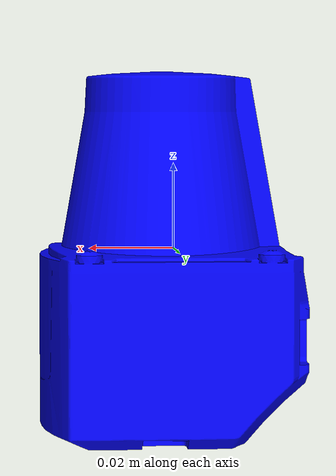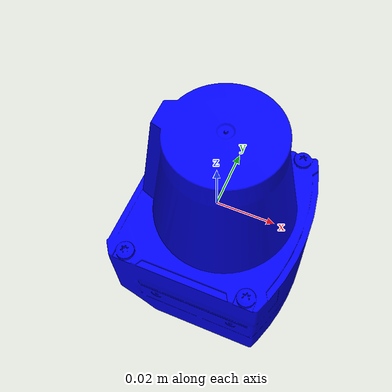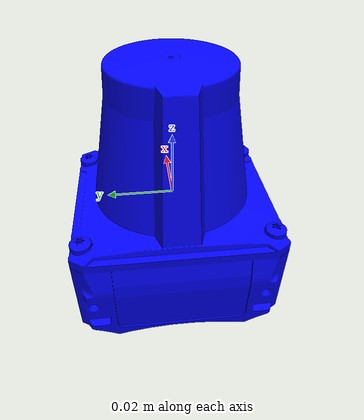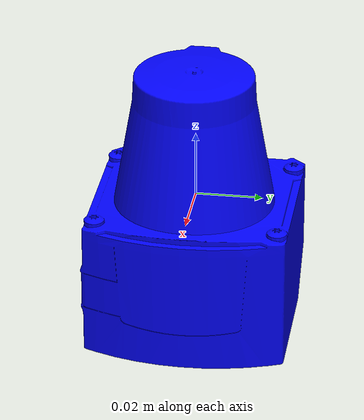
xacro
<?xml version="1.0"?>
<robot xmlns:xacro="http://www.ros.org/wiki/xacro" name="2dlaser2">
<!--xacro:macro name="two_d_laser2"-->
  <link
    name="2dlaser2_link">
    <inertial>
      <origin xyz="0.771243118908379 0.274303584666176 -0.170989052206578" rpy="0 0 0" />
        <mass value="1e-5" />
        <inertia ixx="1e-6" ixy="0" ixz="0" iyy="1e-6" iyz="0" izz="1e-6" />
    </inertial>
    <visual>
      <origin xyz="0 0 0" rpy="0 0 0" />
      <geometry>
        <mesh filename="package://wheelchair_witharm_description/meshes/2dlaser2_link.STL" />
      </geometry>
      <material name="">
        <color rgba="0.00784313725490196 0.0117647058823529 1 1" />
      </material>
    </visual>
    <collision>
      <origin xyz="0 0 0" rpy="0 0 0" />
      <geometry>
        <mesh filename="package://wheelchair_witharm_description/meshes/2dlaser2_link.STL" />
      </geometry>
    </collision>
  </link>

 <!--/xacro:macro-->
</robot>
